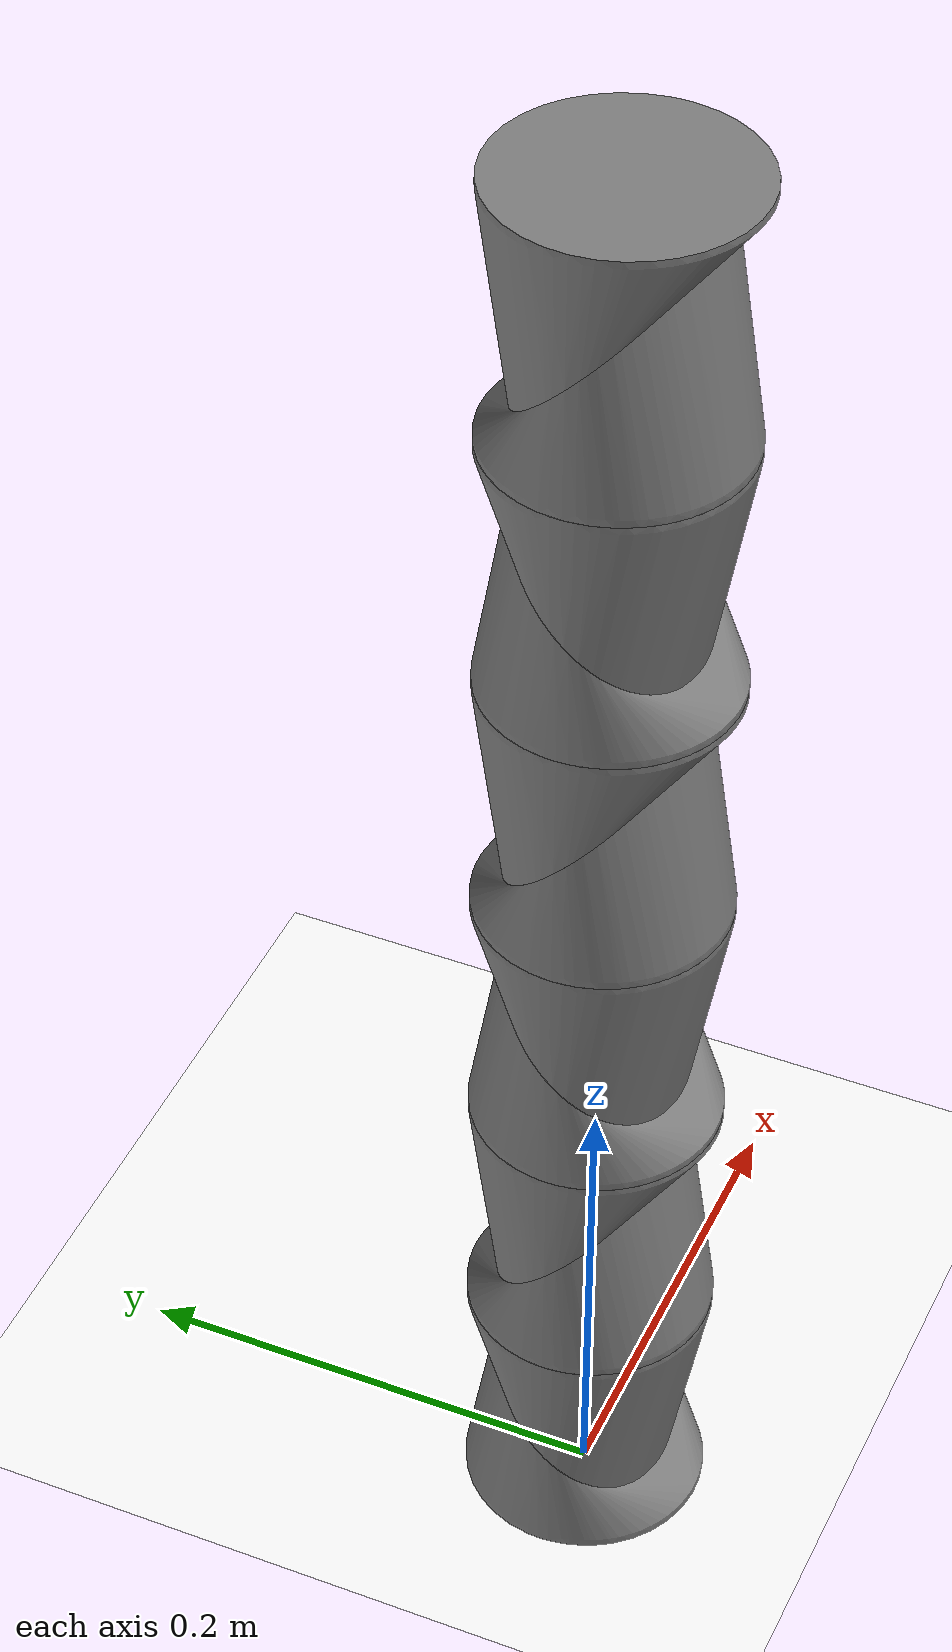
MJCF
<?xml version='1.0' encoding='UTF-8'?>
<mujoco model="zbot">
    <compiler inertiafromgeom="true" angle="degree" autolimits="true" fusestatic="false" />
    <default>
        <geom density="670" />
        <default class="coliision">
            <geom contype="1" conaffinity="0" group="4" type="mesh" mesh="mb" />
            <default class="coliision_a">
                <geom mesh="ma" />
            </default>

            <default class="coliision_b">
                <geom mesh="mb" />
            </default>
        </default>
        <default class="visual">
            <geom contype="0" conaffinity="0" group="1" type="mesh" mesh="mb" />
            <default class="visual_a">
                <geom mesh="ma" />
            </default>

            <default class="visual_b">
                <geom mesh="mb" />
            </default>
        </default>
        <joint range="-180 180" limited="true" />
    </default>

    <asset>
        <mesh name="ma" file="ma.obj" />
        <mesh name="mb" file="mb.obj" />
        <material name="floor" reflectance=".1" />
    </asset>

    <worldbody>
        <geom type="plane" size="5 5 .01" rgba="1 1 1 1" material="floor" contype="127" conaffinity="127" />

        <body name="body_0" pos="0 0 0.0" euler="0 0 0">
            <freejoint />
            <geom class="visual_a" pos="0 0 0" />
            <body name="body_1" pos="0 0 0.106">
                <joint name="joint_0" type="hinge" pos="0 0 -0.053" axis="0 -1 1" />
                <geom class="visual_b" pos="0 0 -0.106" />
                <geom class="visual_a" pos="0 0 0.0" euler="0 0 180" />
                <body name="body_2" pos="0 0 0.106" euler="0 0 180">
                    <joint name="joint_1" type="hinge" pos="0 0 -0.053" axis="0 -1 1" />
                    <geom class="visual_b" pos="0 0 -0.106" />
                    <geom class="visual_a" pos="0 0 0.0" euler="0 0 180" />
                    <body name="body_3" pos="0 0 0.106" euler="0 0 180">
                        <joint name="joint_2" type="hinge" pos="0 0 -0.053" axis="0 -1 1" />
                        <geom class="visual_b" pos="0 0 -0.106" />
                        <geom class="visual_a" pos="0 0 0.0" euler="0 0 180" />
                        <body name="body_4" pos="0 0 0.106" euler="0 0 180">
                            <joint name="joint_3" type="hinge" pos="0 0 -0.053" axis="0 -1 1" />
                            <geom class="visual_b" pos="0 0 -0.106" />
                            <geom class="visual_a" pos="0 0 0.0" euler="0 0 180" />
                            <body name="body_5" pos="0 0 0.106" euler="0 0 180">
                                <joint name="joint_4" type="hinge" pos="0 0 -0.053" axis="0 -1 1" />
                                <geom class="visual_b" pos="0 0 -0.106" />
                                <geom class="visual_a" pos="0 0 0.0" euler="0 0 180" />
                                <body name="body_6" pos="0 0 0.106" euler="0 0 180">
                                    <joint name="joint_5" type="hinge" pos="0 0 -0.053" axis="0 -1 1" />
                                    <geom class="visual_b" pos="0 0 -0.106" />
                                    </body>
                            </body>
                        </body>
                    </body>
                </body>
            </body>
        </body>
    </worldbody>
<option timestep="0.0166" gravity="0 0 -9.81" integrator="implicitfast" /><actuator><position name="joint_0" joint="joint_0" kp="10" forcelimited="false" ctrllimited="false" /><position name="joint_1" joint="joint_1" kp="10" forcelimited="false" ctrllimited="false" /><position name="joint_2" joint="joint_2" kp="10" forcelimited="false" ctrllimited="false" /><position name="joint_3" joint="joint_3" kp="10" forcelimited="false" ctrllimited="false" /><position name="joint_4" joint="joint_4" kp="10" forcelimited="false" ctrllimited="false" /><position name="joint_5" joint="joint_5" kp="10" forcelimited="false" ctrllimited="false" /></actuator><sensor><framequat name="rl_base_quat" objtype="xbody" objname="body_3" /><frameangvel name="rl_base_angvel" objtype="xbody" objname="body_3" /><framepos name="rl_base_pos" objtype="xbody" objname="body_3" /><framelinvel name="rl_base_linvel" objtype="xbody" objname="body_3" /></sensor><keyframe><key name="initial" qpos="0.060039203613996506 4.108063876628876e-06 2.8498470783233643e-06 0.9999998807907104 -0.0001561969256727025 -0.00032950445893220603 -0.0004151310713496059 -0.312 -0.837 2.02 -2.02 0.837 0.312" ctrl="-0.312 -0.837 2.02 -2.02 0.837 0.312" /></keyframe></mujoco>
